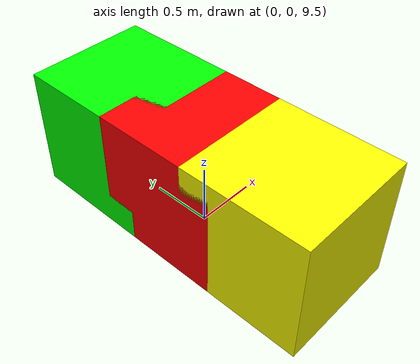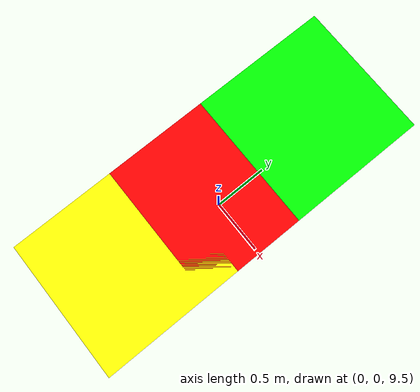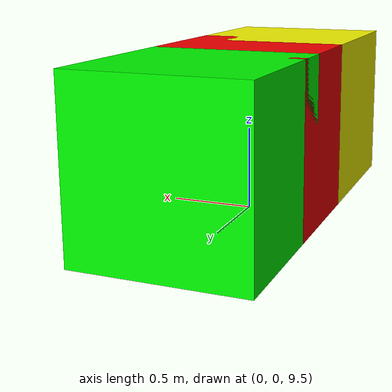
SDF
<?xml version="1.0" ?>
<sdf version="1.6">
  <world name="shapes_bitmask">
    <model name="ground_plane">
      <static>true</static>
      <link name="link">
        <collision name="collision">
          <geometry>
            <plane>
              <normal>0 0 1</normal>
            </plane>
          </geometry>
        </collision>
        <visual name="visual">
          <geometry>
            <plane>
              <normal>0 0 1</normal>
              <size>100 100</size>
            </plane>
          </geometry>
          <material>
            <ambient>0.8 0.8 0.8 1</ambient>
            <diffuse>0.8 0.8 0.8 1</diffuse>
            <specular>0.8 0.8 0.8 1</specular>
          </material>
        </visual>
      </link>
    </model>

    <model name="box_base">
      <pose>0 0 10.0 0 0 0</pose>
      <link name="link">
        <inertial>
          <inertia>
            <ixx>1</ixx>
            <ixy>0</ixy>
            <ixz>0</ixz>
            <iyy>1</iyy>
            <iyz>0</iyz>
            <izz>1</izz>
          </inertia>
          <mass>1.0</mass>
        </inertial>
        <collision name="collision">
          <geometry>
            <box>
              <size>1 1 1</size>
            </box>
          </geometry>
          <surface>
            <contact>
              <collide_bitmask>0x01</collide_bitmask>
            </contact>
          </surface>
        </collision>
        <visual name="visual">
          <geometry>
            <box>
              <size>1 1 1</size>
            </box>
          </geometry>
          <material>
            <ambient>1 0 0 1</ambient>
            <diffuse>1 0 0 1</diffuse>
            <specular>1 0 0 1</specular>
          </material>
        </visual>
      </link>
    </model>

    <model name="box_filtered">
      <pose>0 0.75 10.0 0 0 0</pose>
      <link name="link">
        <inertial>
          <inertia>
            <ixx>1</ixx>
            <ixy>0</ixy>
            <ixz>0</ixz>
            <iyy>1</iyy>
            <iyz>0</iyz>
            <izz>1</izz>
          </inertia>
          <mass>1.0</mass>
        </inertial>
        <collision name="collision">
          <geometry>
            <box>
              <size>1 1 1</size>
            </box>
          </geometry>
          <surface>
            <contact>
              <collide_bitmask>0x02</collide_bitmask>
            </contact>
          </surface>
        </collision>
        <visual name="visual">
          <geometry>
            <box>
              <size>1 1 1</size>
            </box>
          </geometry>
          <material>
            <ambient>0 1 0 1</ambient>
            <diffuse>0 1 0 1</diffuse>
            <specular>0 1 0 1</specular>
          </material>
        </visual>
      </link>
    </model>

    <model name="box_colliding">
      <pose>0 -0.75 10.0 0 0 0</pose>
      <link name="link">
        <inertial>
          <inertia>
            <ixx>1</ixx>
            <ixy>0</ixy>
            <ixz>0</ixz>
            <iyy>1</iyy>
            <iyz>0</iyz>
            <izz>1</izz>
          </inertia>
          <mass>1.0</mass>
        </inertial>
        <collision name="collision">
          <geometry>
            <box>
              <size>1 1 1</size>
            </box>
          </geometry>
          <surface>
            <contact>
              <collide_bitmask>0x03</collide_bitmask>
            </contact>
          </surface>
        </collision>
        <visual name="visual">
          <geometry>
            <box>
              <size>1 1 1</size>
            </box>
          </geometry>
          <material>
            <ambient>1 1 0 1</ambient>
            <diffuse>1 1 0 1</diffuse>
            <specular>1 1 0 1</specular>
          </material>
        </visual>
      </link>
    </model>

  </world>
</sdf>
